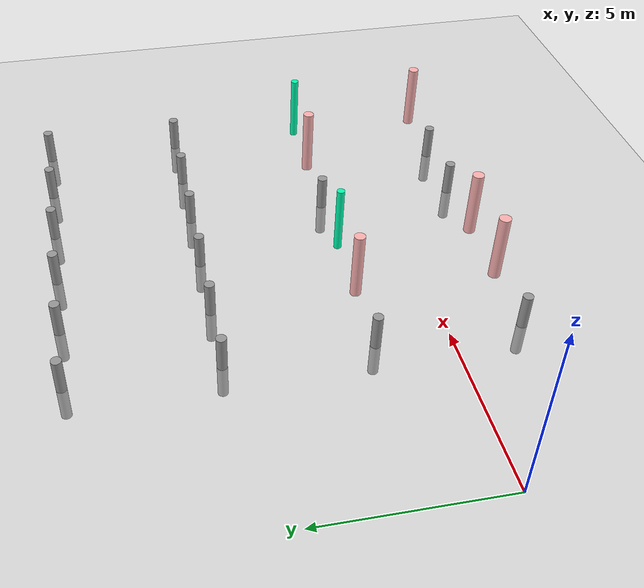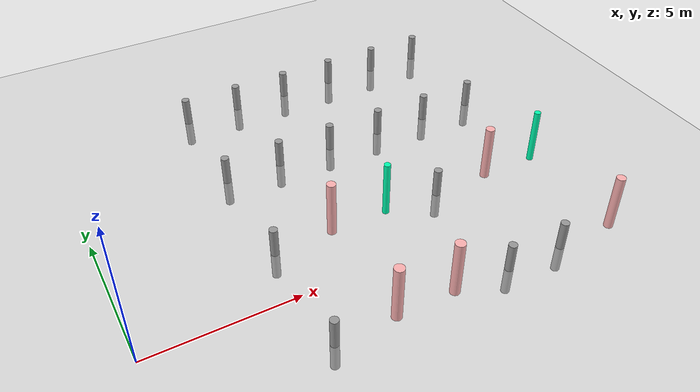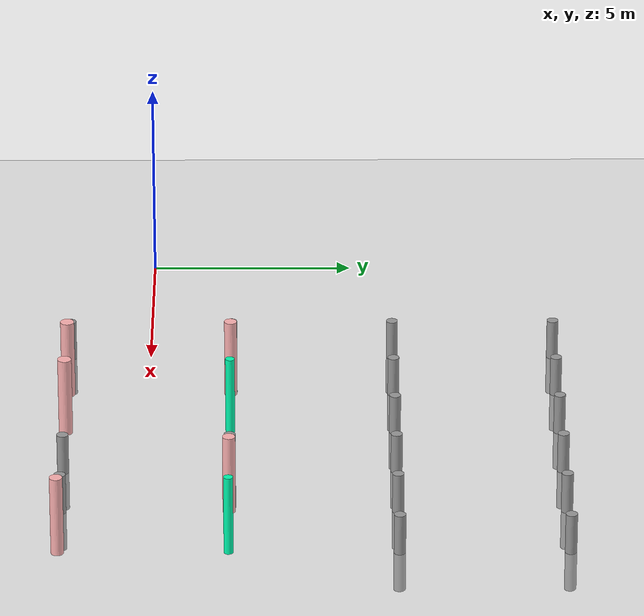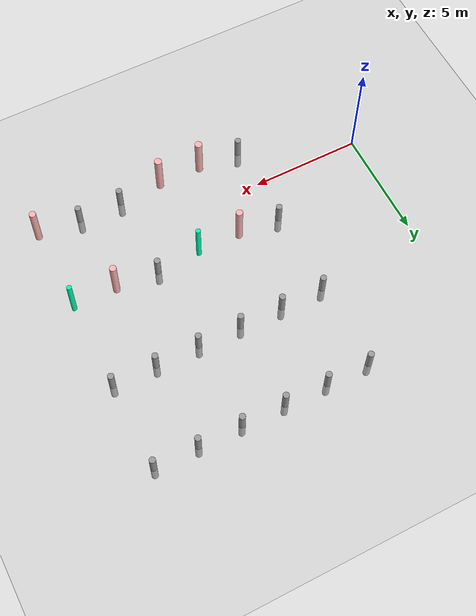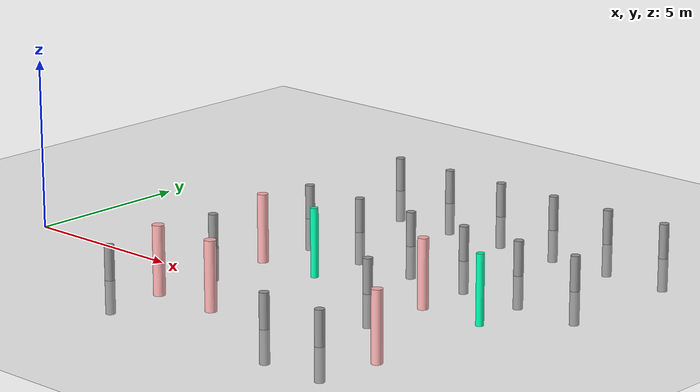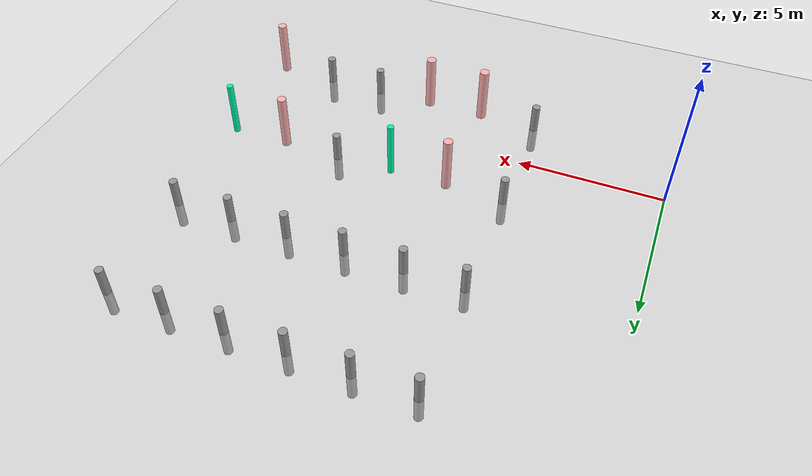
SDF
<sdf version="1.6">
 <world name="default">
  <model name="ground_plane">
   <static>1</static>
   <link name="link">
    <collision name="collision">
     <geometry><plane><normal>0 0 1</normal><size>100 100</size></plane></geometry>
     <surface><friction><ode><mu>100</mu><mu2>50</mu2></ode></friction></surface>
    </collision>
    <visual name="visual">
     <cast_shadows>0</cast_shadows>
     <geometry><plane><normal>0 0 1</normal><size>100 100</size></plane></geometry>
     <material>
      <script><uri>file://media/materials/scripts/gazebo.material</uri><name>Gazebo/Grey</name></script>
     </material>
    </visual>
   </link>
  </model>
  <model name="my_cylinder014_clone_58">
   <pose>5 -2 0 0 -0 0</pose>
   <link name="my_cylinder014::link">
    <inertial>
     <mass>1</mass>
     <inertia><ixx>0.145833</ixx><ixy>0</ixy><ixz>0</ixz><iyy>0.145833</iyy><iyz>0</iyz><izz>0.125</izz></inertia>
    </inertial>
    <visual name="visual">
     <geometry><cylinder><radius>0.14</radius><length>2</length></cylinder></geometry>
     <material>
      <script><name>Gazebo/Grey</name><uri>file://media/materials/scripts/gazebo.material</uri></script>
      <ambient>0.3 0.3 0.3 1</ambient>
      <diffuse>0.7 0.7 0.7 1</diffuse>
      <specular>1 0.01 0.01 1</specular>
      <emissive>0 0 0 1</emissive>
      <shader type="vertex"><normal_map>__default__</normal_map></shader>
     </material>
    </visual>
    <collision name="collision">
     <geometry><cylinder><radius>0.14</radius><length>2</length></cylinder></geometry>
     <surface>
      <friction>
       <ode><mu>1</mu><mu2>1</mu2><fdir1>0 0 0</fdir1><slip1>0</slip1><slip2>0</slip2></ode>
       <torsional>
        <coefficient>1</coefficient>
        <patch_radius>0</patch_radius>
        <surface_radius>0</surface_radius>
        <use_patch_radius>1</use_patch_radius>
        <ode><slip>0</slip></ode>
       </torsional>
      </friction>
      <bounce><restitution_coefficient>0</restitution_coefficient><threshold>1e+06</threshold></bounce>
      <contact>
       <collide_without_contact>0</collide_without_contact>
       <collide_without_contact_bitmask>1</collide_without_contact_bitmask>
       <collide_bitmask>1</collide_bitmask>
       <ode>
        <soft_cfm>0</soft_cfm>
        <soft_erp>0.2</soft_erp>
        <kp>1e+13</kp>
        <kd>1</kd>
        <max_vel>0.01</max_vel>
        <min_depth>0</min_depth>
       </ode>
       <bullet>
        <split_impulse>1</split_impulse>
        <split_impulse_penetration_threshold>-0.01</split_impulse_penetration_threshold>
        <soft_cfm>0</soft_cfm>
        <soft_erp>0.2</soft_erp>
        <kp>1e+13</kp>
        <kd>1</kd>
       </bullet>
      </contact>
     </surface>
    </collision>
   </link>
   <static>1</static>
  </model>
  <model name="my_cylinder014_clone_61">
   <pose>11 -2 0 0 -0 0</pose>
   <link name="my_cylinder014::link">
    <inertial>
     <mass>1</mass>
     <inertia><ixx>0.145833</ixx><ixy>0</ixy><ixz>0</ixz><iyy>0.145833</iyy><iyz>0</iyz><izz>0.125</izz></inertia>
    </inertial>
    <visual name="visual">
     <geometry><cylinder><radius>0.14</radius><length>2</length></cylinder></geometry>
     <material>
      <script><name>Gazebo/Grey</name><uri>file://media/materials/scripts/gazebo.material</uri></script>
      <ambient>0.3 0.3 0.3 1</ambient>
      <diffuse>0.7 0.7 0.7 1</diffuse>
      <specular>1 0.01 0.01 1</specular>
      <emissive>0 0 0 1</emissive>
      <shader type="vertex"><normal_map>__default__</normal_map></shader>
     </material>
    </visual>
    <collision name="collision">
     <geometry><cylinder><radius>0.14</radius><length>2</length></cylinder></geometry>
     <surface>
      <friction>
       <ode><mu>1</mu><mu2>1</mu2><fdir1>0 0 0</fdir1><slip1>0</slip1><slip2>0</slip2></ode>
       <torsional>
        <coefficient>1</coefficient>
        <patch_radius>0</patch_radius>
        <surface_radius>0</surface_radius>
        <use_patch_radius>1</use_patch_radius>
        <ode><slip>0</slip></ode>
       </torsional>
      </friction>
      <bounce><restitution_coefficient>0</restitution_coefficient><threshold>1e+06</threshold></bounce>
      <contact>
       <collide_without_contact>0</collide_without_contact>
       <collide_without_contact_bitmask>1</collide_without_contact_bitmask>
       <collide_bitmask>1</collide_bitmask>
       <ode>
        <soft_cfm>0</soft_cfm>
        <soft_erp>0.2</soft_erp>
        <kp>1e+13</kp>
        <kd>1</kd>
        <max_vel>0.01</max_vel>
        <min_depth>0</min_depth>
       </ode>
       <bullet>
        <split_impulse>1</split_impulse>
        <split_impulse_penetration_threshold>-0.01</split_impulse_penetration_threshold>
        <soft_cfm>0</soft_cfm>
        <soft_erp>0.2</soft_erp>
        <kp>1e+13</kp>
        <kd>1</kd>
       </bullet>
      </contact>
     </surface>
    </collision>
   </link>
   <static>1</static>
  </model>
  <model name="my_cylinder014_clone_62">
   <pose>13 -2 0 0 -0 0</pose>
   <link name="my_cylinder014::link">
    <inertial>
     <mass>1</mass>
     <inertia><ixx>0.145833</ixx><ixy>0</ixy><ixz>0</ixz><iyy>0.145833</iyy><iyz>0</iyz><izz>0.125</izz></inertia>
    </inertial>
    <visual name="visual">
     <geometry><cylinder><radius>0.14</radius><length>2</length></cylinder></geometry>
     <material>
      <script><name>Gazebo/Grey</name><uri>file://media/materials/scripts/gazebo.material</uri></script>
      <ambient>0.3 0.3 0.3 1</ambient>
      <diffuse>0.7 0.7 0.7 1</diffuse>
      <specular>1 0.01 0.01 1</specular>
      <emissive>0 0 0 1</emissive>
      <shader type="vertex"><normal_map>__default__</normal_map></shader>
     </material>
    </visual>
    <collision name="collision">
     <geometry><cylinder><radius>0.14</radius><length>2</length></cylinder></geometry>
     <surface>
      <friction>
       <ode><mu>1</mu><mu2>1</mu2><fdir1>0 0 0</fdir1><slip1>0</slip1><slip2>0</slip2></ode>
       <torsional>
        <coefficient>1</coefficient>
        <patch_radius>0</patch_radius>
        <surface_radius>0</surface_radius>
        <use_patch_radius>1</use_patch_radius>
        <ode><slip>0</slip></ode>
       </torsional>
      </friction>
      <bounce><restitution_coefficient>0</restitution_coefficient><threshold>1e+06</threshold></bounce>
      <contact>
       <collide_without_contact>0</collide_without_contact>
       <collide_without_contact_bitmask>1</collide_without_contact_bitmask>
       <collide_bitmask>1</collide_bitmask>
       <ode>
        <soft_cfm>0</soft_cfm>
        <soft_erp>0.2</soft_erp>
        <kp>1e+13</kp>
        <kd>1</kd>
        <max_vel>0.01</max_vel>
        <min_depth>0</min_depth>
       </ode>
       <bullet>
        <split_impulse>1</split_impulse>
        <split_impulse_penetration_threshold>-0.01</split_impulse_penetration_threshold>
        <soft_cfm>0</soft_cfm>
        <soft_erp>0.2</soft_erp>
        <kp>1e+13</kp>
        <kd>1</kd>
       </bullet>
      </contact>
     </surface>
    </collision>
   </link>
   <static>1</static>
  </model>
  <model name="my_cylinder014_clone_74">
   <pose>5 2 0 0 -0 0</pose>
   <link name="my_cylinder014::link">
    <inertial>
     <mass>1</mass>
     <inertia><ixx>0.145833</ixx><ixy>0</ixy><ixz>0</ixz><iyy>0.145833</iyy><iyz>0</iyz><izz>0.125</izz></inertia>
    </inertial>
    <visual name="visual">
     <geometry><cylinder><radius>0.14</radius><length>2</length></cylinder></geometry>
     <material>
      <script><name>Gazebo/Grey</name><uri>file://media/materials/scripts/gazebo.material</uri></script>
      <ambient>0.3 0.3 0.3 1</ambient>
      <diffuse>0.7 0.7 0.7 1</diffuse>
      <specular>1 0.01 0.01 1</specular>
      <emissive>0 0 0 1</emissive>
      <shader type="vertex"><normal_map>__default__</normal_map></shader>
     </material>
    </visual>
    <collision name="collision">
     <geometry><cylinder><radius>0.14</radius><length>2</length></cylinder></geometry>
     <surface>
      <friction>
       <ode><mu>1</mu><mu2>1</mu2><fdir1>0 0 0</fdir1><slip1>0</slip1><slip2>0</slip2></ode>
       <torsional>
        <coefficient>1</coefficient>
        <patch_radius>0</patch_radius>
        <surface_radius>0</surface_radius>
        <use_patch_radius>1</use_patch_radius>
        <ode><slip>0</slip></ode>
       </torsional>
      </friction>
      <bounce><restitution_coefficient>0</restitution_coefficient><threshold>1e+06</threshold></bounce>
      <contact>
       <collide_without_contact>0</collide_without_contact>
       <collide_without_contact_bitmask>1</collide_without_contact_bitmask>
       <collide_bitmask>1</collide_bitmask>
       <ode>
        <soft_cfm>0</soft_cfm>
        <soft_erp>0.2</soft_erp>
        <kp>1e+13</kp>
        <kd>1</kd>
        <max_vel>0.01</max_vel>
        <min_depth>0</min_depth>
       </ode>
       <bullet>
        <split_impulse>1</split_impulse>
        <split_impulse_penetration_threshold>-0.01</split_impulse_penetration_threshold>
        <soft_cfm>0</soft_cfm>
        <soft_erp>0.2</soft_erp>
        <kp>1e+13</kp>
        <kd>1</kd>
       </bullet>
      </contact>
     </surface>
    </collision>
   </link>
   <static>1</static>
  </model>
  <model name="my_cylinder014_clone_77">
   <pose>11 2 0 0 -0 0</pose>
   <link name="my_cylinder014::link">
    <inertial>
     <mass>1</mass>
     <inertia><ixx>0.145833</ixx><ixy>0</ixy><ixz>0</ixz><iyy>0.145833</iyy><iyz>0</iyz><izz>0.125</izz></inertia>
    </inertial>
    <visual name="visual">
     <geometry><cylinder><radius>0.14</radius><length>2</length></cylinder></geometry>
     <material>
      <script><name>Gazebo/Grey</name><uri>file://media/materials/scripts/gazebo.material</uri></script>
      <ambient>0.3 0.3 0.3 1</ambient>
      <diffuse>0.7 0.7 0.7 1</diffuse>
      <specular>1 0.01 0.01 1</specular>
      <emissive>0 0 0 1</emissive>
      <shader type="vertex"><normal_map>__default__</normal_map></shader>
     </material>
    </visual>
    <collision name="collision">
     <geometry><cylinder><radius>0.14</radius><length>2</length></cylinder></geometry>
     <surface>
      <friction>
       <ode><mu>1</mu><mu2>1</mu2><fdir1>0 0 0</fdir1><slip1>0</slip1><slip2>0</slip2></ode>
       <torsional>
        <coefficient>1</coefficient>
        <patch_radius>0</patch_radius>
        <surface_radius>0</surface_radius>
        <use_patch_radius>1</use_patch_radius>
        <ode><slip>0</slip></ode>
       </torsional>
      </friction>
      <bounce><restitution_coefficient>0</restitution_coefficient><threshold>1e+06</threshold></bounce>
      <contact>
       <collide_without_contact>0</collide_without_contact>
       <collide_without_contact_bitmask>1</collide_without_contact_bitmask>
       <collide_bitmask>1</collide_bitmask>
       <ode>
        <soft_cfm>0</soft_cfm>
        <soft_erp>0.2</soft_erp>
        <kp>1e+13</kp>
        <kd>1</kd>
        <max_vel>0.01</max_vel>
        <min_depth>0</min_depth>
       </ode>
       <bullet>
        <split_impulse>1</split_impulse>
        <split_impulse_penetration_threshold>-0.01</split_impulse_penetration_threshold>
        <soft_cfm>0</soft_cfm>
        <soft_erp>0.2</soft_erp>
        <kp>1e+13</kp>
        <kd>1</kd>
       </bullet>
      </contact>
     </surface>
    </collision>
   </link>
   <static>1</static>
  </model>
  <model name="my_cylinder014_clone_90">
   <pose>5 6 0 0 -0 0</pose>
   <link name="my_cylinder014::link">
    <inertial>
     <mass>1</mass>
     <inertia><ixx>0.145833</ixx><ixy>0</ixy><ixz>0</ixz><iyy>0.145833</iyy><iyz>0</iyz><izz>0.125</izz></inertia>
    </inertial>
    <visual name="visual">
     <geometry><cylinder><radius>0.14</radius><length>2</length></cylinder></geometry>
     <material>
      <script><name>Gazebo/Grey</name><uri>file://media/materials/scripts/gazebo.material</uri></script>
      <ambient>0.3 0.3 0.3 1</ambient>
      <diffuse>0.7 0.7 0.7 1</diffuse>
      <specular>1 0.01 0.01 1</specular>
      <emissive>0 0 0 1</emissive>
      <shader type="vertex"><normal_map>__default__</normal_map></shader>
     </material>
    </visual>
    <collision name="collision">
     <geometry><cylinder><radius>0.14</radius><length>2</length></cylinder></geometry>
     <surface>
      <friction>
       <ode><mu>1</mu><mu2>1</mu2><fdir1>0 0 0</fdir1><slip1>0</slip1><slip2>0</slip2></ode>
       <torsional>
        <coefficient>1</coefficient>
        <patch_radius>0</patch_radius>
        <surface_radius>0</surface_radius>
        <use_patch_radius>1</use_patch_radius>
        <ode><slip>0</slip></ode>
       </torsional>
      </friction>
      <bounce><restitution_coefficient>0</restitution_coefficient><threshold>1e+06</threshold></bounce>
      <contact>
       <collide_without_contact>0</collide_without_contact>
       <collide_without_contact_bitmask>1</collide_without_contact_bitmask>
       <collide_bitmask>1</collide_bitmask>
       <ode>
        <soft_cfm>0</soft_cfm>
        <soft_erp>0.2</soft_erp>
        <kp>1e+13</kp>
        <kd>1</kd>
        <max_vel>0.01</max_vel>
        <min_depth>0</min_depth>
       </ode>
       <bullet>
        <split_impulse>1</split_impulse>
        <split_impulse_penetration_threshold>-0.01</split_impulse_penetration_threshold>
        <soft_cfm>0</soft_cfm>
        <soft_erp>0.2</soft_erp>
        <kp>1e+13</kp>
        <kd>1</kd>
       </bullet>
      </contact>
     </surface>
    </collision>
   </link>
   <static>1</static>
  </model>
  <model name="my_cylinder014_clone_91">
   <pose>7 6 0 0 -0 0</pose>
   <link name="my_cylinder014::link">
    <inertial>
     <mass>1</mass>
     <inertia><ixx>0.145833</ixx><ixy>0</ixy><ixz>0</ixz><iyy>0.145833</iyy><iyz>0</iyz><izz>0.125</izz></inertia>
    </inertial>
    <visual name="visual">
     <geometry><cylinder><radius>0.14</radius><length>2</length></cylinder></geometry>
     <material>
      <script><name>Gazebo/Grey</name><uri>file://media/materials/scripts/gazebo.material</uri></script>
      <ambient>0.3 0.3 0.3 1</ambient>
      <diffuse>0.7 0.7 0.7 1</diffuse>
      <specular>1 0.01 0.01 1</specular>
      <emissive>0 0 0 1</emissive>
      <shader type="vertex"><normal_map>__default__</normal_map></shader>
     </material>
    </visual>
    <collision name="collision">
     <geometry><cylinder><radius>0.14</radius><length>2</length></cylinder></geometry>
     <surface>
      <friction>
       <ode><mu>1</mu><mu2>1</mu2><fdir1>0 0 0</fdir1><slip1>0</slip1><slip2>0</slip2></ode>
       <torsional>
        <coefficient>1</coefficient>
        <patch_radius>0</patch_radius>
        <surface_radius>0</surface_radius>
        <use_patch_radius>1</use_patch_radius>
        <ode><slip>0</slip></ode>
       </torsional>
      </friction>
      <bounce><restitution_coefficient>0</restitution_coefficient><threshold>1e+06</threshold></bounce>
      <contact>
       <collide_without_contact>0</collide_without_contact>
       <collide_without_contact_bitmask>1</collide_without_contact_bitmask>
       <collide_bitmask>1</collide_bitmask>
       <ode>
        <soft_cfm>0</soft_cfm>
        <soft_erp>0.2</soft_erp>
        <kp>1e+13</kp>
        <kd>1</kd>
        <max_vel>0.01</max_vel>
        <min_depth>0</min_depth>
       </ode>
       <bullet>
        <split_impulse>1</split_impulse>
        <split_impulse_penetration_threshold>-0.01</split_impulse_penetration_threshold>
        <soft_cfm>0</soft_cfm>
        <soft_erp>0.2</soft_erp>
        <kp>1e+13</kp>
        <kd>1</kd>
       </bullet>
      </contact>
     </surface>
    </collision>
   </link>
   <static>1</static>
  </model>
  <model name="my_cylinder014_clone_92">
   <pose>9 6 0 0 -0 0</pose>
   <link name="my_cylinder014::link">
    <inertial>
     <mass>1</mass>
     <inertia><ixx>0.145833</ixx><ixy>0</ixy><ixz>0</ixz><iyy>0.145833</iyy><iyz>0</iyz><izz>0.125</izz></inertia>
    </inertial>
    <visual name="visual">
     <geometry><cylinder><radius>0.14</radius><length>2</length></cylinder></geometry>
     <material>
      <script><name>Gazebo/Grey</name><uri>file://media/materials/scripts/gazebo.material</uri></script>
      <ambient>0.3 0.3 0.3 1</ambient>
      <diffuse>0.7 0.7 0.7 1</diffuse>
      <specular>1 0.01 0.01 1</specular>
      <emissive>0 0 0 1</emissive>
      <shader type="vertex"><normal_map>__default__</normal_map></shader>
     </material>
    </visual>
    <collision name="collision">
     <geometry><cylinder><radius>0.14</radius><length>2</length></cylinder></geometry>
     <surface>
      <friction>
       <ode><mu>1</mu><mu2>1</mu2><fdir1>0 0 0</fdir1><slip1>0</slip1><slip2>0</slip2></ode>
       <torsional>
        <coefficient>1</coefficient>
        <patch_radius>0</patch_radius>
        <surface_radius>0</surface_radius>
        <use_patch_radius>1</use_patch_radius>
        <ode><slip>0</slip></ode>
       </torsional>
      </friction>
      <bounce><restitution_coefficient>0</restitution_coefficient><threshold>1e+06</threshold></bounce>
      <contact>
       <collide_without_contact>0</collide_without_contact>
       <collide_without_contact_bitmask>1</collide_without_contact_bitmask>
       <collide_bitmask>1</collide_bitmask>
       <ode>
        <soft_cfm>0</soft_cfm>
        <soft_erp>0.2</soft_erp>
        <kp>1e+13</kp>
        <kd>1</kd>
        <max_vel>0.01</max_vel>
        <min_depth>0</min_depth>
       </ode>
       <bullet>
        <split_impulse>1</split_impulse>
        <split_impulse_penetration_threshold>-0.01</split_impulse_penetration_threshold>
        <soft_cfm>0</soft_cfm>
        <soft_erp>0.2</soft_erp>
        <kp>1e+13</kp>
        <kd>1</kd>
       </bullet>
      </contact>
     </surface>
    </collision>
   </link>
   <static>1</static>
  </model>
  <model name="my_cylinder014_clone_93">
   <pose>11 6 0 0 -0 0</pose>
   <link name="my_cylinder014::link">
    <inertial>
     <mass>1</mass>
     <inertia><ixx>0.145833</ixx><ixy>0</ixy><ixz>0</ixz><iyy>0.145833</iyy><iyz>0</iyz><izz>0.125</izz></inertia>
    </inertial>
    <visual name="visual">
     <geometry><cylinder><radius>0.14</radius><length>2</length></cylinder></geometry>
     <material>
      <script><name>Gazebo/Grey</name><uri>file://media/materials/scripts/gazebo.material</uri></script>
      <ambient>0.3 0.3 0.3 1</ambient>
      <diffuse>0.7 0.7 0.7 1</diffuse>
      <specular>1 0.01 0.01 1</specular>
      <emissive>0 0 0 1</emissive>
      <shader type="vertex"><normal_map>__default__</normal_map></shader>
     </material>
    </visual>
    <collision name="collision">
     <geometry><cylinder><radius>0.14</radius><length>2</length></cylinder></geometry>
     <surface>
      <friction>
       <ode><mu>1</mu><mu2>1</mu2><fdir1>0 0 0</fdir1><slip1>0</slip1><slip2>0</slip2></ode>
       <torsional>
        <coefficient>1</coefficient>
        <patch_radius>0</patch_radius>
        <surface_radius>0</surface_radius>
        <use_patch_radius>1</use_patch_radius>
        <ode><slip>0</slip></ode>
       </torsional>
      </friction>
      <bounce><restitution_coefficient>0</restitution_coefficient><threshold>1e+06</threshold></bounce>
      <contact>
       <collide_without_contact>0</collide_without_contact>
       <collide_without_contact_bitmask>1</collide_without_contact_bitmask>
       <collide_bitmask>1</collide_bitmask>
       <ode>
        <soft_cfm>0</soft_cfm>
        <soft_erp>0.2</soft_erp>
        <kp>1e+13</kp>
        <kd>1</kd>
        <max_vel>0.01</max_vel>
        <min_depth>0</min_depth>
       </ode>
       <bullet>
        <split_impulse>1</split_impulse>
        <split_impulse_penetration_threshold>-0.01</split_impulse_penetration_threshold>
        <soft_cfm>0</soft_cfm>
        <soft_erp>0.2</soft_erp>
        <kp>1e+13</kp>
        <kd>1</kd>
       </bullet>
      </contact>
     </surface>
    </collision>
   </link>
   <static>1</static>
  </model>
  <model name="my_cylinder014_clone_94">
   <pose>13 6 0 0 -0 0</pose>
   <link name="my_cylinder014::link">
    <inertial>
     <mass>1</mass>
     <inertia><ixx>0.145833</ixx><ixy>0</ixy><ixz>0</ixz><iyy>0.145833</iyy><iyz>0</iyz><izz>0.125</izz></inertia>
    </inertial>
    <visual name="visual">
     <geometry><cylinder><radius>0.14</radius><length>2</length></cylinder></geometry>
     <material>
      <script><name>Gazebo/Grey</name><uri>file://media/materials/scripts/gazebo.material</uri></script>
      <ambient>0.3 0.3 0.3 1</ambient>
      <diffuse>0.7 0.7 0.7 1</diffuse>
      <specular>1 0.01 0.01 1</specular>
      <emissive>0 0 0 1</emissive>
      <shader type="vertex"><normal_map>__default__</normal_map></shader>
     </material>
    </visual>
    <collision name="collision">
     <geometry><cylinder><radius>0.14</radius><length>2</length></cylinder></geometry>
     <surface>
      <friction>
       <ode><mu>1</mu><mu2>1</mu2><fdir1>0 0 0</fdir1><slip1>0</slip1><slip2>0</slip2></ode>
       <torsional>
        <coefficient>1</coefficient>
        <patch_radius>0</patch_radius>
        <surface_radius>0</surface_radius>
        <use_patch_radius>1</use_patch_radius>
        <ode><slip>0</slip></ode>
       </torsional>
      </friction>
      <bounce><restitution_coefficient>0</restitution_coefficient><threshold>1e+06</threshold></bounce>
      <contact>
       <collide_without_contact>0</collide_without_contact>
       <collide_without_contact_bitmask>1</collide_without_contact_bitmask>
       <collide_bitmask>1</collide_bitmask>
       <ode>
        <soft_cfm>0</soft_cfm>
        <soft_erp>0.2</soft_erp>
        <kp>1e+13</kp>
        <kd>1</kd>
        <max_vel>0.01</max_vel>
        <min_depth>0</min_depth>
       </ode>
       <bullet>
        <split_impulse>1</split_impulse>
        <split_impulse_penetration_threshold>-0.01</split_impulse_penetration_threshold>
        <soft_cfm>0</soft_cfm>
        <soft_erp>0.2</soft_erp>
        <kp>1e+13</kp>
        <kd>1</kd>
       </bullet>
      </contact>
     </surface>
    </collision>
   </link>
   <static>1</static>
  </model>
  <model name="my_cylinder014_clone_95">
   <pose>15 6 0 0 -0 0</pose>
   <link name="my_cylinder014::link">
    <inertial>
     <mass>1</mass>
     <inertia><ixx>0.145833</ixx><ixy>0</ixy><ixz>0</ixz><iyy>0.145833</iyy><iyz>0</iyz><izz>0.125</izz></inertia>
    </inertial>
    <visual name="visual">
     <geometry><cylinder><radius>0.14</radius><length>2</length></cylinder></geometry>
     <material>
      <script><name>Gazebo/Grey</name><uri>file://media/materials/scripts/gazebo.material</uri></script>
      <ambient>0.3 0.3 0.3 1</ambient>
      <diffuse>0.7 0.7 0.7 1</diffuse>
      <specular>1 0.01 0.01 1</specular>
      <emissive>0 0 0 1</emissive>
      <shader type="vertex"><normal_map>__default__</normal_map></shader>
     </material>
    </visual>
    <collision name="collision">
     <geometry><cylinder><radius>0.14</radius><length>2</length></cylinder></geometry>
     <surface>
      <friction>
       <ode><mu>1</mu><mu2>1</mu2><fdir1>0 0 0</fdir1><slip1>0</slip1><slip2>0</slip2></ode>
       <torsional>
        <coefficient>1</coefficient>
        <patch_radius>0</patch_radius>
        <surface_radius>0</surface_radius>
        <use_patch_radius>1</use_patch_radius>
        <ode><slip>0</slip></ode>
       </torsional>
      </friction>
      <bounce><restitution_coefficient>0</restitution_coefficient><threshold>1e+06</threshold></bounce>
      <contact>
       <collide_without_contact>0</collide_without_contact>
       <collide_without_contact_bitmask>1</collide_without_contact_bitmask>
       <collide_bitmask>1</collide_bitmask>
       <ode>
        <soft_cfm>0</soft_cfm>
        <soft_erp>0.2</soft_erp>
        <kp>1e+13</kp>
        <kd>1</kd>
        <max_vel>0.01</max_vel>
        <min_depth>0</min_depth>
       </ode>
       <bullet>
        <split_impulse>1</split_impulse>
        <split_impulse_penetration_threshold>-0.01</split_impulse_penetration_threshold>
        <soft_cfm>0</soft_cfm>
        <soft_erp>0.2</soft_erp>
        <kp>1e+13</kp>
        <kd>1</kd>
       </bullet>
      </contact>
     </surface>
    </collision>
   </link>
   <static>1</static>
  </model>
  <model name="my_cylinder014_clone_106">
   <pose>5 10 0 0 -0 0</pose>
   <link name="my_cylinder014::link">
    <inertial>
     <mass>1</mass>
     <inertia><ixx>0.145833</ixx><ixy>0</ixy><ixz>0</ixz><iyy>0.145833</iyy><iyz>0</iyz><izz>0.125</izz></inertia>
    </inertial>
    <visual name="visual">
     <geometry><cylinder><radius>0.14</radius><length>2</length></cylinder></geometry>
     <material>
      <script><name>Gazebo/Grey</name><uri>file://media/materials/scripts/gazebo.material</uri></script>
      <ambient>0.3 0.3 0.3 1</ambient>
      <diffuse>0.7 0.7 0.7 1</diffuse>
      <specular>1 0.01 0.01 1</specular>
      <emissive>0 0 0 1</emissive>
      <shader type="vertex"><normal_map>__default__</normal_map></shader>
     </material>
    </visual>
    <collision name="collision">
     <geometry><cylinder><radius>0.14</radius><length>2</length></cylinder></geometry>
     <surface>
      <friction>
       <ode><mu>1</mu><mu2>1</mu2><fdir1>0 0 0</fdir1><slip1>0</slip1><slip2>0</slip2></ode>
       <torsional>
        <coefficient>1</coefficient>
        <patch_radius>0</patch_radius>
        <surface_radius>0</surface_radius>
        <use_patch_radius>1</use_patch_radius>
        <ode><slip>0</slip></ode>
       </torsional>
      </friction>
      <bounce><restitution_coefficient>0</restitution_coefficient><threshold>1e+06</threshold></bounce>
      <contact>
       <collide_without_contact>0</collide_without_contact>
       <collide_without_contact_bitmask>1</collide_without_contact_bitmask>
       <collide_bitmask>1</collide_bitmask>
       <ode>
        <soft_cfm>0</soft_cfm>
        <soft_erp>0.2</soft_erp>
        <kp>1e+13</kp>
        <kd>1</kd>
        <max_vel>0.01</max_vel>
        <min_depth>0</min_depth>
       </ode>
       <bullet>
        <split_impulse>1</split_impulse>
        <split_impulse_penetration_threshold>-0.01</split_impulse_penetration_threshold>
        <soft_cfm>0</soft_cfm>
        <soft_erp>0.2</soft_erp>
        <kp>1e+13</kp>
        <kd>1</kd>
       </bullet>
      </contact>
     </surface>
    </collision>
   </link>
   <static>1</static>
  </model>
  <model name="my_cylinder014_clone_107">
   <pose>7 10 0 0 -0 0</pose>
   <link name="my_cylinder014::link">
    <inertial>
     <mass>1</mass>
     <inertia><ixx>0.145833</ixx><ixy>0</ixy><ixz>0</ixz><iyy>0.145833</iyy><iyz>0</iyz><izz>0.125</izz></inertia>
    </inertial>
    <visual name="visual">
     <geometry><cylinder><radius>0.14</radius><length>2</length></cylinder></geometry>
     <material>
      <script><name>Gazebo/Grey</name><uri>file://media/materials/scripts/gazebo.material</uri></script>
      <ambient>0.3 0.3 0.3 1</ambient>
      <diffuse>0.7 0.7 0.7 1</diffuse>
      <specular>1 0.01 0.01 1</specular>
      <emissive>0 0 0 1</emissive>
      <shader type="vertex"><normal_map>__default__</normal_map></shader>
     </material>
    </visual>
    <collision name="collision">
     <geometry><cylinder><radius>0.14</radius><length>2</length></cylinder></geometry>
     <surface>
      <friction>
       <ode><mu>1</mu><mu2>1</mu2><fdir1>0 0 0</fdir1><slip1>0</slip1><slip2>0</slip2></ode>
       <torsional>
        <coefficient>1</coefficient>
        <patch_radius>0</patch_radius>
        <surface_radius>0</surface_radius>
        <use_patch_radius>1</use_patch_radius>
        <ode><slip>0</slip></ode>
       </torsional>
      </friction>
      <bounce><restitution_coefficient>0</restitution_coefficient><threshold>1e+06</threshold></bounce>
      <contact>
       <collide_without_contact>0</collide_without_contact>
       <collide_without_contact_bitmask>1</collide_without_contact_bitmask>
       <collide_bitmask>1</collide_bitmask>
       <ode>
        <soft_cfm>0</soft_cfm>
        <soft_erp>0.2</soft_erp>
        <kp>1e+13</kp>
        <kd>1</kd>
        <max_vel>0.01</max_vel>
        <min_depth>0</min_depth>
       </ode>
       <bullet>
        <split_impulse>1</split_impulse>
        <split_impulse_penetration_threshold>-0.01</split_impulse_penetration_threshold>
        <soft_cfm>0</soft_cfm>
        <soft_erp>0.2</soft_erp>
        <kp>1e+13</kp>
        <kd>1</kd>
       </bullet>
      </contact>
     </surface>
    </collision>
   </link>
   <static>1</static>
  </model>
  <model name="my_cylinder014_clone_108">
   <pose>9 10 0 0 -0 0</pose>
   <link name="my_cylinder014::link">
    <inertial>
     <mass>1</mass>
     <inertia><ixx>0.145833</ixx><ixy>0</ixy><ixz>0</ixz><iyy>0.145833</iyy><iyz>0</iyz><izz>0.125</izz></inertia>
    </inertial>
    <visual name="visual">
     <geometry><cylinder><radius>0.14</radius><length>2</length></cylinder></geometry>
     <material>
      <script><name>Gazebo/Grey</name><uri>file://media/materials/scripts/gazebo.material</uri></script>
      <ambient>0.3 0.3 0.3 1</ambient>
      <diffuse>0.7 0.7 0.7 1</diffuse>
      <specular>1 0.01 0.01 1</specular>
      <emissive>0 0 0 1</emissive>
      <shader type="vertex"><normal_map>__default__</normal_map></shader>
     </material>
    </visual>
    <collision name="collision">
     <geometry><cylinder><radius>0.14</radius><length>2</length></cylinder></geometry>
     <surface>
      <friction>
       <ode><mu>1</mu><mu2>1</mu2><fdir1>0 0 0</fdir1><slip1>0</slip1><slip2>0</slip2></ode>
       <torsional>
        <coefficient>1</coefficient>
        <patch_radius>0</patch_radius>
        <surface_radius>0</surface_radius>
        <use_patch_radius>1</use_patch_radius>
        <ode><slip>0</slip></ode>
       </torsional>
      </friction>
      <bounce><restitution_coefficient>0</restitution_coefficient><threshold>1e+06</threshold></bounce>
      <contact>
       <collide_without_contact>0</collide_without_contact>
       <collide_without_contact_bitmask>1</collide_without_contact_bitmask>
       <collide_bitmask>1</collide_bitmask>
       <ode>
        <soft_cfm>0</soft_cfm>
        <soft_erp>0.2</soft_erp>
        <kp>1e+13</kp>
        <kd>1</kd>
        <max_vel>0.01</max_vel>
        <min_depth>0</min_depth>
       </ode>
       <bullet>
        <split_impulse>1</split_impulse>
        <split_impulse_penetration_threshold>-0.01</split_impulse_penetration_threshold>
        <soft_cfm>0</soft_cfm>
        <soft_erp>0.2</soft_erp>
        <kp>1e+13</kp>
        <kd>1</kd>
       </bullet>
      </contact>
     </surface>
    </collision>
   </link>
   <static>1</static>
  </model>
  <model name="my_cylinder014_clone_109">
   <pose>11 10 0 0 -0 0</pose>
   <link name="my_cylinder014::link">
    <inertial>
     <mass>1</mass>
     <inertia><ixx>0.145833</ixx><ixy>0</ixy><ixz>0</ixz><iyy>0.145833</iyy><iyz>0</iyz><izz>0.125</izz></inertia>
    </inertial>
    <visual name="visual">
     <geometry><cylinder><radius>0.14</radius><length>2</length></cylinder></geometry>
     <material>
      <script><name>Gazebo/Grey</name><uri>file://media/materials/scripts/gazebo.material</uri></script>
      <ambient>0.3 0.3 0.3 1</ambient>
      <diffuse>0.7 0.7 0.7 1</diffuse>
      <specular>1 0.01 0.01 1</specular>
      <emissive>0 0 0 1</emissive>
      <shader type="vertex"><normal_map>__default__</normal_map></shader>
     </material>
    </visual>
    <collision name="collision">
     <geometry><cylinder><radius>0.14</radius><length>2</length></cylinder></geometry>
     <surface>
      <friction>
       <ode><mu>1</mu><mu2>1</mu2><fdir1>0 0 0</fdir1><slip1>0</slip1><slip2>0</slip2></ode>
       <torsional>
        <coefficient>1</coefficient>
        <patch_radius>0</patch_radius>
        <surface_radius>0</surface_radius>
        <use_patch_radius>1</use_patch_radius>
        <ode><slip>0</slip></ode>
       </torsional>
      </friction>
      <bounce><restitution_coefficient>0</restitution_coefficient><threshold>1e+06</threshold></bounce>
      <contact>
       <collide_without_contact>0</collide_without_contact>
       <collide_without_contact_bitmask>1</collide_without_contact_bitmask>
       <collide_bitmask>1</collide_bitmask>
       <ode>
        <soft_cfm>0</soft_cfm>
        <soft_erp>0.2</soft_erp>
        <kp>1e+13</kp>
        <kd>1</kd>
        <max_vel>0.01</max_vel>
        <min_depth>0</min_depth>
       </ode>
       <bullet>
        <split_impulse>1</split_impulse>
        <split_impulse_penetration_threshold>-0.01</split_impulse_penetration_threshold>
        <soft_cfm>0</soft_cfm>
        <soft_erp>0.2</soft_erp>
        <kp>1e+13</kp>
        <kd>1</kd>
       </bullet>
      </contact>
     </surface>
    </collision>
   </link>
   <static>1</static>
  </model>
  <model name="my_cylinder014_clone_110">
   <pose>13 10 0 0 -0 0</pose>
   <link name="my_cylinder014::link">
    <inertial>
     <mass>1</mass>
     <inertia><ixx>0.145833</ixx><ixy>0</ixy><ixz>0</ixz><iyy>0.145833</iyy><iyz>0</iyz><izz>0.125</izz></inertia>
    </inertial>
    <visual name="visual">
     <geometry><cylinder><radius>0.14</radius><length>2</length></cylinder></geometry>
     <material>
      <script><name>Gazebo/Grey</name><uri>file://media/materials/scripts/gazebo.material</uri></script>
      <ambient>0.3 0.3 0.3 1</ambient>
      <diffuse>0.7 0.7 0.7 1</diffuse>
      <specular>1 0.01 0.01 1</specular>
      <emissive>0 0 0 1</emissive>
      <shader type="vertex"><normal_map>__default__</normal_map></shader>
     </material>
    </visual>
    <collision name="collision">
     <geometry><cylinder><radius>0.14</radius><length>2</length></cylinder></geometry>
     <surface>
      <friction>
       <ode><mu>1</mu><mu2>1</mu2><fdir1>0 0 0</fdir1><slip1>0</slip1><slip2>0</slip2></ode>
       <torsional>
        <coefficient>1</coefficient>
        <patch_radius>0</patch_radius>
        <surface_radius>0</surface_radius>
        <use_patch_radius>1</use_patch_radius>
        <ode><slip>0</slip></ode>
       </torsional>
      </friction>
      <bounce><restitution_coefficient>0</restitution_coefficient><threshold>1e+06</threshold></bounce>
      <contact>
       <collide_without_contact>0</collide_without_contact>
       <collide_without_contact_bitmask>1</collide_without_contact_bitmask>
       <collide_bitmask>1</collide_bitmask>
       <ode>
        <soft_cfm>0</soft_cfm>
        <soft_erp>0.2</soft_erp>
        <kp>1e+13</kp>
        <kd>1</kd>
        <max_vel>0.01</max_vel>
        <min_depth>0</min_depth>
       </ode>
       <bullet>
        <split_impulse>1</split_impulse>
        <split_impulse_penetration_threshold>-0.01</split_impulse_penetration_threshold>
        <soft_cfm>0</soft_cfm>
        <soft_erp>0.2</soft_erp>
        <kp>1e+13</kp>
        <kd>1</kd>
       </bullet>
      </contact>
     </surface>
    </collision>
   </link>
   <static>1</static>
  </model>
  <model name="my_cylinder014_clone_111">
   <pose>15 10 0 0 -0 0</pose>
   <link name="my_cylinder014::link">
    <inertial>
     <mass>1</mass>
     <inertia><ixx>0.145833</ixx><ixy>0</ixy><ixz>0</ixz><iyy>0.145833</iyy><iyz>0</iyz><izz>0.125</izz></inertia>
    </inertial>
    <visual name="visual">
     <geometry><cylinder><radius>0.14</radius><length>2</length></cylinder></geometry>
     <material>
      <script><name>Gazebo/Grey</name><uri>file://media/materials/scripts/gazebo.material</uri></script>
      <ambient>0.3 0.3 0.3 1</ambient>
      <diffuse>0.7 0.7 0.7 1</diffuse>
      <specular>1 0.01 0.01 1</specular>
      <emissive>0 0 0 1</emissive>
      <shader type="vertex"><normal_map>__default__</normal_map></shader>
     </material>
    </visual>
    <collision name="collision">
     <geometry><cylinder><radius>0.14</radius><length>2</length></cylinder></geometry>
     <surface>
      <friction>
       <ode><mu>1</mu><mu2>1</mu2><fdir1>0 0 0</fdir1><slip1>0</slip1><slip2>0</slip2></ode>
       <torsional>
        <coefficient>1</coefficient>
        <patch_radius>0</patch_radius>
        <surface_radius>0</surface_radius>
        <use_patch_radius>1</use_patch_radius>
        <ode><slip>0</slip></ode>
       </torsional>
      </friction>
      <bounce><restitution_coefficient>0</restitution_coefficient><threshold>1e+06</threshold></bounce>
      <contact>
       <collide_without_contact>0</collide_without_contact>
       <collide_without_contact_bitmask>1</collide_without_contact_bitmask>
       <collide_bitmask>1</collide_bitmask>
       <ode>
        <soft_cfm>0</soft_cfm>
        <soft_erp>0.2</soft_erp>
        <kp>1e+13</kp>
        <kd>1</kd>
        <max_vel>0.01</max_vel>
        <min_depth>0</min_depth>
       </ode>
       <bullet>
        <split_impulse>1</split_impulse>
        <split_impulse_penetration_threshold>-0.01</split_impulse_penetration_threshold>
        <soft_cfm>0</soft_cfm>
        <soft_erp>0.2</soft_erp>
        <kp>1e+13</kp>
        <kd>1</kd>
       </bullet>
      </contact>
     </surface>
    </collision>
   </link>
   <static>1</static>
  </model>
  <model name="my_cylinder0168_0">
   <link name="link">
    <inertial>
     <mass>1</mass>
     <inertia><ixx>0.145833</ixx><ixy>0</ixy><ixz>0</ixz><iyy>0.145833</iyy><iyz>0</iyz><izz>0.125</izz></inertia>
    </inertial>
    <visual name="visual">
     <geometry><cylinder><radius>0.168</radius><length>2</length></cylinder></geometry>
     <material>
      <script><name>Gazebo/Grey</name><uri>file://media/materials/scripts/gazebo.material</uri></script>
      <ambient>1 0.3 0.3 1</ambient>
      <diffuse>1 0.7 0.7 1</diffuse>
      <specular>1 0.01 0.01 1</specular>
      <emissive>1 0 0 1</emissive>
      <shader type="vertex"><normal_map>__default__</normal_map></shader>
     </material>
    </visual>
    <collision name="collision">
     <geometry><cylinder><radius>0.168</radius><length>2</length></cylinder></geometry>
     <surface>
      <friction>
       <ode><mu>1</mu><mu2>1</mu2><fdir1>0 0 0</fdir1><slip1>0</slip1><slip2>0</slip2></ode>
       <torsional>
        <coefficient>1</coefficient>
        <patch_radius>0</patch_radius>
        <surface_radius>0</surface_radius>
        <use_patch_radius>1</use_patch_radius>
        <ode><slip>0</slip></ode>
       </torsional>
      </friction>
      <bounce><restitution_coefficient>0</restitution_coefficient><threshold>1e+06</threshold></bounce>
      <contact>
       <collide_without_contact>0</collide_without_contact>
       <collide_without_contact_bitmask>1</collide_without_contact_bitmask>
       <collide_bitmask>1</collide_bitmask>
       <ode>
        <soft_cfm>0</soft_cfm>
        <soft_erp>0.2</soft_erp>
        <kp>1e+13</kp>
        <kd>1</kd>
        <max_vel>0.01</max_vel>
        <min_depth>0</min_depth>
       </ode>
       <bullet>
        <split_impulse>1</split_impulse>
        <split_impulse_penetration_threshold>-0.01</split_impulse_penetration_threshold>
        <soft_cfm>0</soft_cfm>
        <soft_erp>0.2</soft_erp>
        <kp>1e+13</kp>
        <kd>1</kd>
       </bullet>
      </contact>
     </surface>
    </collision>
   </link>
   <static>0</static>
   <pose>7 -2 0.999995 0 -0 0.000257</pose>
  </model>
  <model name="my_cylinder0168_1">
   <link name="link">
    <inertial>
     <mass>1</mass>
     <inertia><ixx>0.145833</ixx><ixy>0</ixy><ixz>0</ixz><iyy>0.145833</iyy><iyz>0</iyz><izz>0.125</izz></inertia>
    </inertial>
    <visual name="visual">
     <geometry><cylinder><radius>0.168</radius><length>2</length></cylinder></geometry>
     <material>
      <script><name>Gazebo/Grey</name><uri>file://media/materials/scripts/gazebo.material</uri></script>
      <ambient>1 0.3 0.3 1</ambient>
      <diffuse>1 0.7 0.7 1</diffuse>
      <specular>1 0.01 0.01 1</specular>
      <emissive>1 0 0 1</emissive>
      <shader type="vertex"><normal_map>__default__</normal_map></shader>
     </material>
    </visual>
    <collision name="collision">
     <geometry><cylinder><radius>0.168</radius><length>2</length></cylinder></geometry>
     <surface>
      <friction>
       <ode><mu>1</mu><mu2>1</mu2><fdir1>0 0 0</fdir1><slip1>0</slip1><slip2>0</slip2></ode>
       <torsional>
        <coefficient>1</coefficient>
        <patch_radius>0</patch_radius>
        <surface_radius>0</surface_radius>
        <use_patch_radius>1</use_patch_radius>
        <ode><slip>0</slip></ode>
       </torsional>
      </friction>
      <bounce><restitution_coefficient>0</restitution_coefficient><threshold>1e+06</threshold></bounce>
      <contact>
       <collide_without_contact>0</collide_without_contact>
       <collide_without_contact_bitmask>1</collide_without_contact_bitmask>
       <collide_bitmask>1</collide_bitmask>
       <ode>
        <soft_cfm>0</soft_cfm>
        <soft_erp>0.2</soft_erp>
        <kp>1e+13</kp>
        <kd>1</kd>
        <max_vel>0.01</max_vel>
        <min_depth>0</min_depth>
       </ode>
       <bullet>
        <split_impulse>1</split_impulse>
        <split_impulse_penetration_threshold>-0.01</split_impulse_penetration_threshold>
        <soft_cfm>0</soft_cfm>
        <soft_erp>0.2</soft_erp>
        <kp>1e+13</kp>
        <kd>1</kd>
       </bullet>
      </contact>
     </surface>
    </collision>
   </link>
   <static>0</static>
   <pose>9.00001 -1.99999 0.999995 0 -0 0.000289</pose>
  </model>
  <model name="my_cylinder0154">
   <link name="link">
    <inertial>
     <mass>1</mass>
     <inertia><ixx>0.145833</ixx><ixy>0</ixy><ixz>0</ixz><iyy>0.145833</iyy><iyz>0</iyz><izz>0.125</izz></inertia>
    </inertial>
    <visual name="visual">
     <geometry><cylinder><radius>0.154</radius><length>2</length></cylinder></geometry>
     <material>
      <script><name>Gazebo/Grey</name><uri>file://media/materials/scripts/gazebo.material</uri></script>
      <ambient>0.8 0.3 0.3 1</ambient>
      <diffuse>1 0.7 0.7 1</diffuse>
      <specular>1 0.01 0.01 1</specular>
      <emissive>0 0 0 1</emissive>
      <shader type="vertex"><normal_map>__default__</normal_map></shader>
     </material>
    </visual>
    <collision name="collision">
     <geometry><cylinder><radius>0.154</radius><length>2</length></cylinder></geometry>
     <surface>
      <friction>
       <ode><mu>1</mu><mu2>1</mu2><fdir1>0 0 0</fdir1><slip1>0</slip1><slip2>0</slip2></ode>
       <torsional>
        <coefficient>1</coefficient>
        <patch_radius>0</patch_radius>
        <surface_radius>0</surface_radius>
        <use_patch_radius>1</use_patch_radius>
        <ode><slip>0</slip></ode>
       </torsional>
      </friction>
      <bounce><restitution_coefficient>0</restitution_coefficient><threshold>1e+06</threshold></bounce>
      <contact>
       <collide_without_contact>0</collide_without_contact>
       <collide_without_contact_bitmask>1</collide_without_contact_bitmask>
       <collide_bitmask>1</collide_bitmask>
       <ode>
        <soft_cfm>0</soft_cfm>
        <soft_erp>0.2</soft_erp>
        <kp>1e+13</kp>
        <kd>1</kd>
        <max_vel>0.01</max_vel>
        <min_depth>0</min_depth>
       </ode>
       <bullet>
        <split_impulse>1</split_impulse>
        <split_impulse_penetration_threshold>-0.01</split_impulse_penetration_threshold>
        <soft_cfm>0</soft_cfm>
        <soft_erp>0.2</soft_erp>
        <kp>1e+13</kp>
        <kd>1</kd>
       </bullet>
      </contact>
     </surface>
    </collision>
   </link>
   <static>0</static>
   <pose>7 2 0.999995 0 0 -8.8e-05</pose>
  </model>
  <model name="my_cylinder0112_1">
   <link name="link">
    <inertial>
     <mass>1</mass>
     <inertia><ixx>0.145833</ixx><ixy>0</ixy><ixz>0</ixz><iyy>0.145833</iyy><iyz>0</iyz><izz>0.125</izz></inertia>
    </inertial>
    <visual name="visual">
     <geometry><cylinder><radius>0.112</radius><length>2</length></cylinder></geometry>
     <material>
      <script><name>Gazebo/Grey</name><uri>file://media/materials/scripts/gazebo.material</uri></script>
      <ambient>0 1 0.3 1</ambient>
      <diffuse>0 1 0.7 1</diffuse>
      <specular>1 1 0.01 1</specular>
      <emissive>0 0 0 1</emissive>
      <shader type="vertex"><normal_map>__default__</normal_map></shader>
     </material>
    </visual>
    <collision name="collision">
     <geometry><cylinder><radius>0.112</radius><length>2</length></cylinder></geometry>
     <surface>
      <friction>
       <ode><mu>1</mu><mu2>1</mu2><fdir1>0 0 0</fdir1><slip1>0</slip1><slip2>0</slip2></ode>
       <torsional>
        <coefficient>1</coefficient>
        <patch_radius>0</patch_radius>
        <surface_radius>0</surface_radius>
        <use_patch_radius>1</use_patch_radius>
        <ode><slip>0</slip></ode>
       </torsional>
      </friction>
      <bounce><restitution_coefficient>0</restitution_coefficient><threshold>1e+06</threshold></bounce>
      <contact>
       <collide_without_contact>0</collide_without_contact>
       <collide_without_contact_bitmask>1</collide_without_contact_bitmask>
       <collide_bitmask>1</collide_bitmask>
       <ode>
        <soft_cfm>0</soft_cfm>
        <soft_erp>0.2</soft_erp>
        <kp>1e+13</kp>
        <kd>1</kd>
        <max_vel>0.01</max_vel>
        <min_depth>0</min_depth>
       </ode>
       <bullet>
        <split_impulse>1</split_impulse>
        <split_impulse_penetration_threshold>-0.01</split_impulse_penetration_threshold>
        <soft_cfm>0</soft_cfm>
        <soft_erp>0.2</soft_erp>
        <kp>1e+13</kp>
        <kd>1</kd>
       </bullet>
      </contact>
     </surface>
    </collision>
   </link>
   <static>0</static>
   <pose>9.00007 2.00007 0.999993 0 0 -0.002276</pose>
  </model>
  <model name="my_cylinder0112_2">
   <link name="link">
    <inertial>
     <mass>1</mass>
     <inertia><ixx>0.145833</ixx><ixy>0</ixy><ixz>0</ixz><iyy>0.145833</iyy><iyz>0</iyz><izz>0.125</izz></inertia>
    </inertial>
    <visual name="visual">
     <geometry><cylinder><radius>0.112</radius><length>2</length></cylinder></geometry>
     <material>
      <script><name>Gazebo/Grey</name><uri>file://media/materials/scripts/gazebo.material</uri></script>
      <ambient>0 1 0.3 1</ambient>
      <diffuse>0 1 0.7 1</diffuse>
      <specular>1 1 0.01 1</specular>
      <emissive>0 0 0 1</emissive>
      <shader type="vertex"><normal_map>__default__</normal_map></shader>
     </material>
    </visual>
    <collision name="collision">
     <geometry><cylinder><radius>0.112</radius><length>2</length></cylinder></geometry>
     <surface>
      <friction>
       <ode><mu>1</mu><mu2>1</mu2><fdir1>0 0 0</fdir1><slip1>0</slip1><slip2>0</slip2></ode>
       <torsional>
        <coefficient>1</coefficient>
        <patch_radius>0</patch_radius>
        <surface_radius>0</surface_radius>
        <use_patch_radius>1</use_patch_radius>
        <ode><slip>0</slip></ode>
       </torsional>
      </friction>
      <bounce><restitution_coefficient>0</restitution_coefficient><threshold>1e+06</threshold></bounce>
      <contact>
       <collide_without_contact>0</collide_without_contact>
       <collide_without_contact_bitmask>1</collide_without_contact_bitmask>
       <collide_bitmask>1</collide_bitmask>
       <ode>
        <soft_cfm>0</soft_cfm>
        <soft_erp>0.2</soft_erp>
        <kp>1e+13</kp>
        <kd>1</kd>
        <max_vel>0.01</max_vel>
        <min_depth>0</min_depth>
       </ode>
       <bullet>
        <split_impulse>1</split_impulse>
        <split_impulse_penetration_threshold>-0.01</split_impulse_penetration_threshold>
        <soft_cfm>0</soft_cfm>
        <soft_erp>0.2</soft_erp>
        <kp>1e+13</kp>
        <kd>1</kd>
       </bullet>
      </contact>
     </surface>
    </collision>
   </link>
   <static>0</static>
   <pose>15 2.00001 0.999997 0 0 -0.002041</pose>
  </model>
  <model name="my_cylinder0154_0">
   <link name="link">
    <inertial>
     <mass>1</mass>
     <inertia><ixx>0.145833</ixx><ixy>0</ixy><ixz>0</ixz><iyy>0.145833</iyy><iyz>0</iyz><izz>0.125</izz></inertia>
    </inertial>
    <visual name="visual">
     <geometry><cylinder><radius>0.154</radius><length>2</length></cylinder></geometry>
     <material>
      <script><name>Gazebo/Grey</name><uri>file://media/materials/scripts/gazebo.material</uri></script>
      <ambient>0.8 0.3 0.3 1</ambient>
      <diffuse>1 0.7 0.7 1</diffuse>
      <specular>1 0.01 0.01 1</specular>
      <emissive>0 0 0 1</emissive>
      <shader type="vertex"><normal_map>__default__</normal_map></shader>
     </material>
    </visual>
    <collision name="collision">
     <geometry><cylinder><radius>0.154</radius><length>2</length></cylinder></geometry>
     <surface>
      <friction>
       <ode><mu>1</mu><mu2>1</mu2><fdir1>0 0 0</fdir1><slip1>0</slip1><slip2>0</slip2></ode>
       <torsional>
        <coefficient>1</coefficient>
        <patch_radius>0</patch_radius>
        <surface_radius>0</surface_radius>
        <use_patch_radius>1</use_patch_radius>
        <ode><slip>0</slip></ode>
       </torsional>
      </friction>
      <bounce><restitution_coefficient>0</restitution_coefficient><threshold>1e+06</threshold></bounce>
      <contact>
       <collide_without_contact>0</collide_without_contact>
       <collide_without_contact_bitmask>1</collide_without_contact_bitmask>
       <collide_bitmask>1</collide_bitmask>
       <ode>
        <soft_cfm>0</soft_cfm>
        <soft_erp>0.2</soft_erp>
        <kp>1e+13</kp>
        <kd>1</kd>
        <max_vel>0.01</max_vel>
        <min_depth>0</min_depth>
       </ode>
       <bullet>
        <split_impulse>1</split_impulse>
        <split_impulse_penetration_threshold>-0.01</split_impulse_penetration_threshold>
        <soft_cfm>0</soft_cfm>
        <soft_erp>0.2</soft_erp>
        <kp>1e+13</kp>
        <kd>1</kd>
       </bullet>
      </contact>
     </surface>
    </collision>
   </link>
   <static>0</static>
   <pose>13 2 0.999995 0 0 -0.000111</pose>
  </model>
  <model name="my_cylinder0154_2">
   <link name="link">
    <inertial>
     <mass>1</mass>
     <inertia><ixx>0.145833</ixx><ixy>0</ixy><ixz>0</ixz><iyy>0.145833</iyy><iyz>0</iyz><izz>0.125</izz></inertia>
    </inertial>
    <visual name="visual">
     <geometry><cylinder><radius>0.154</radius><length>2</length></cylinder></geometry>
     <material>
      <script><name>Gazebo/Grey</name><uri>file://media/materials/scripts/gazebo.material</uri></script>
      <ambient>0.8 0.3 0.3 1</ambient>
      <diffuse>1 0.7 0.7 1</diffuse>
      <specular>1 0.01 0.01 1</specular>
      <emissive>0 0 0 1</emissive>
      <shader type="vertex"><normal_map>__default__</normal_map></shader>
     </material>
    </visual>
    <collision name="collision">
     <geometry><cylinder><radius>0.154</radius><length>2</length></cylinder></geometry>
     <surface>
      <friction>
       <ode><mu>1</mu><mu2>1</mu2><fdir1>0 0 0</fdir1><slip1>0</slip1><slip2>0</slip2></ode>
       <torsional>
        <coefficient>1</coefficient>
        <patch_radius>0</patch_radius>
        <surface_radius>0</surface_radius>
        <use_patch_radius>1</use_patch_radius>
        <ode><slip>0</slip></ode>
       </torsional>
      </friction>
      <bounce><restitution_coefficient>0</restitution_coefficient><threshold>1e+06</threshold></bounce>
      <contact>
       <collide_without_contact>0</collide_without_contact>
       <collide_without_contact_bitmask>1</collide_without_contact_bitmask>
       <collide_bitmask>1</collide_bitmask>
       <ode>
        <soft_cfm>0</soft_cfm>
        <soft_erp>0.2</soft_erp>
        <kp>1e+13</kp>
        <kd>1</kd>
        <max_vel>0.01</max_vel>
        <min_depth>0</min_depth>
       </ode>
       <bullet>
        <split_impulse>1</split_impulse>
        <split_impulse_penetration_threshold>-0.01</split_impulse_penetration_threshold>
        <soft_cfm>0</soft_cfm>
        <soft_erp>0.2</soft_erp>
        <kp>1e+13</kp>
        <kd>1</kd>
       </bullet>
      </contact>
     </surface>
    </collision>
   </link>
   <static>0</static>
   <pose>15 -2 0.999995 0 0 -3.6e-05</pose>
  </model>
 </world>
</sdf>
